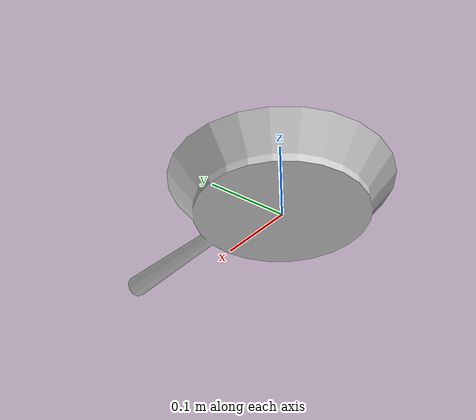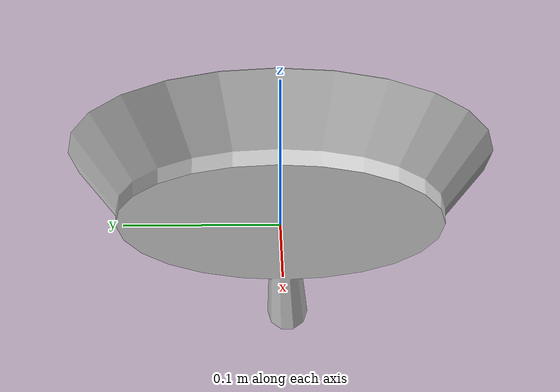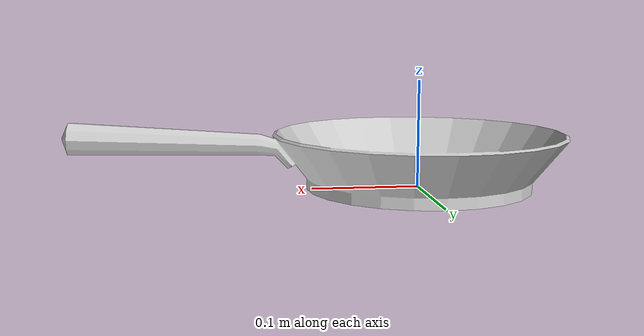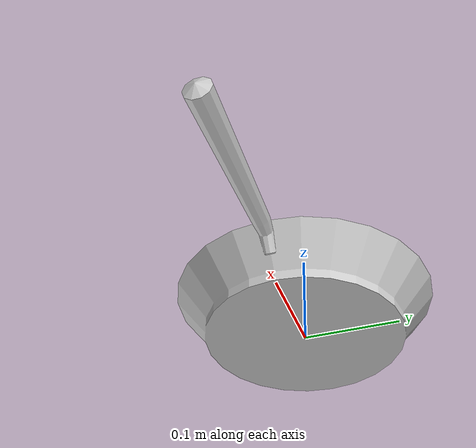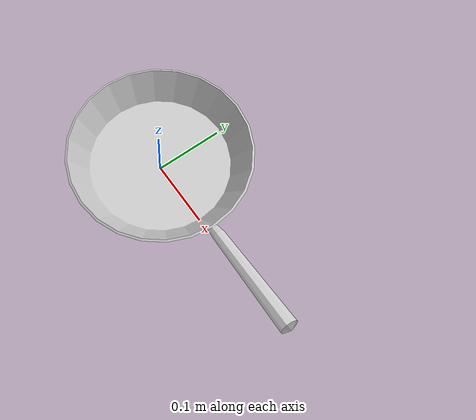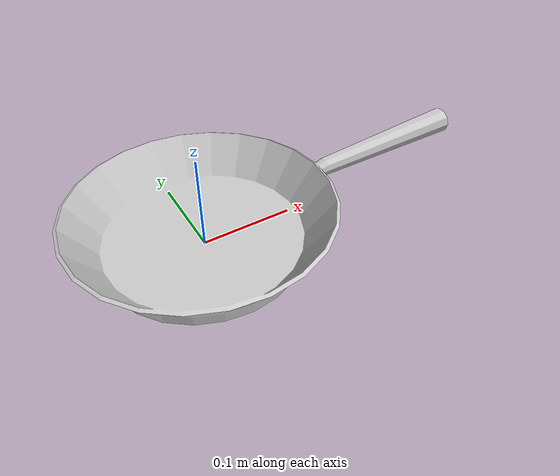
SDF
<?xml version='1.0'?>
<sdf version="1.4">
	<model name="frying_pan">
		<static>1</static>
		<link name="link">
			<visual name="mesh">
				<geometry>
					<mesh>
						<uri>model://meshes/frying_pan.dae</uri>
					</mesh>
				</geometry>
			</visual>
			<collision name="collider">
				<pose>0 0 0.032 0 0 0</pose>
				<geometry>
					<cylinder>
						<radius>0.135</radius>
						<length>0.064</length>
					</cylinder>
				</geometry>
			</collision>
		</link>
	</model>
</sdf>
